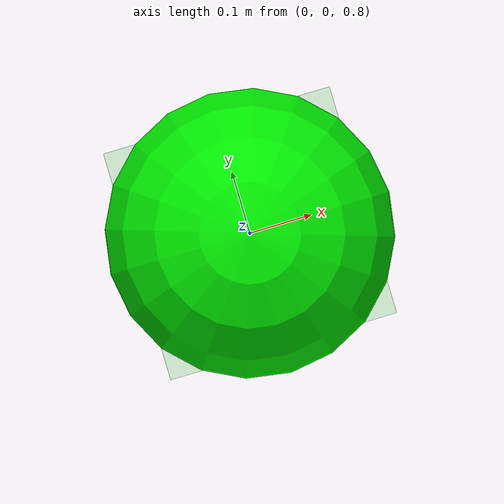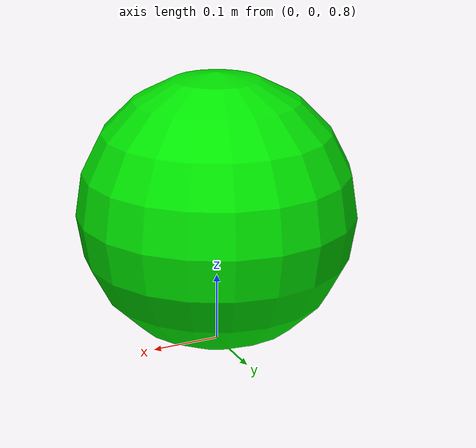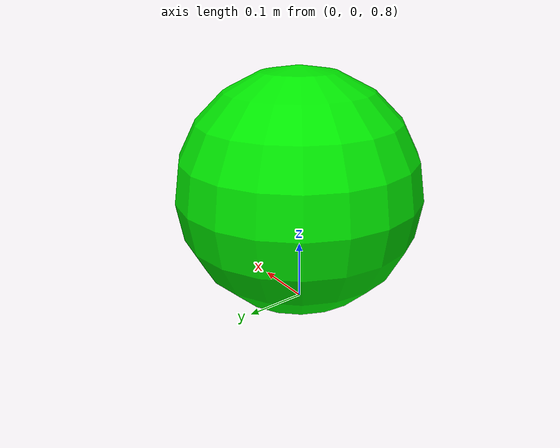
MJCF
<?xml version='1.0' encoding='utf-8'?>
<mujoco model="TT_test">
  <compiler angle="degree" coordinate="local" inertiafromgeom="true" />
  <option timestep="0.002" iterations="50" integrator="RK4" />
  <default>
    <geom conaffinity="1" condim="1" contype="1" material="geom" margin="0.001" rgba="1 .84 0 1" />
    <site type="sphere" size="0.005" />
    <tendon limited="true" range="0 10" width="0.001" rgba="1 0 0 1" stiffness="250.0" />
    <position ctrllimited="true" ctrlrange="-300 0.00" />
    <joint damping="1.0" armature="1.0" limited="false" stiffness="250.0" />
  </default>
  <asset>
    <texture builtin="gradient" height="100" rgb1=".4 .5 .6" rgb2="0 0 0" type="skybox" width="100" />
    <texture builtin="flat" height="1278" mark="cross" markrgb="1 1 1" name="texgeom" random="0.01" rgb1="0.8 0.6 0.4" rgb2="0.8 0.6 0.4" type="cube" width="127" />
    <texture builtin="checker" height="100" name="texplane" rgb1="0 0 0" rgb2="0.8 0.8 0.8" type="2d" width="100" />
    <material name="MatPlane" reflectance="0.5" shininess="1" specular="1" texrepeat="60 60" texture="texplane" />
    <material name="geom" texture="texgeom" texuniform="true" />
  </asset>
  <worldbody>
    <light cutoff="100" diffuse="1 1 1" dir="-0 0 -1.3" directional="true" exponent="1" pos="0 0 1.3" specular=".1 .1 .1" />
    <geom condim="3" friction="1 1 1" material="MatPlane" name="floor" pos="0 0 0" rgba="0.8 0.9 0.8 1" size="20 20 0.125" type="plane" />
    <body pos="0 0 1" name="333">
      <joint type="free" name="111" />
      <geom type="sphere" size=".2" rgba="0 .9 0 1" />
    </body>
  </worldbody>
</mujoco>
